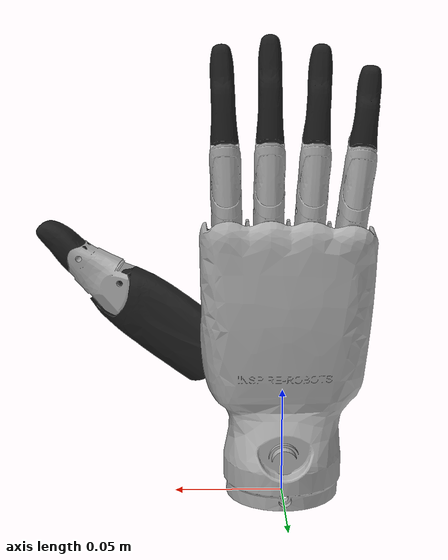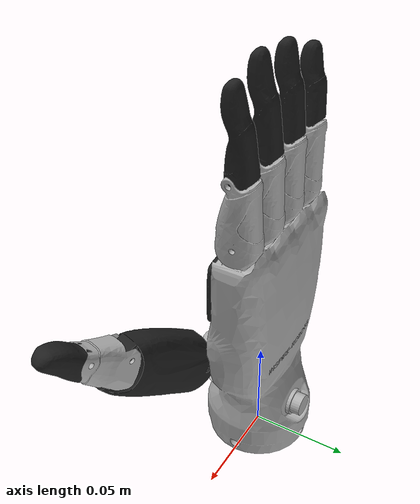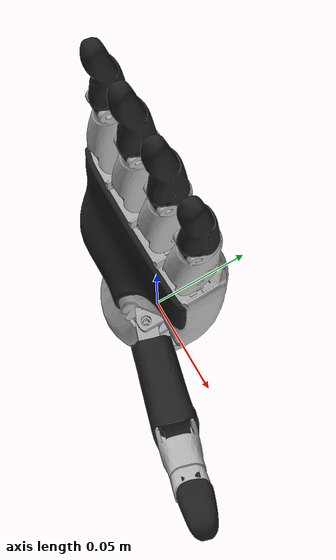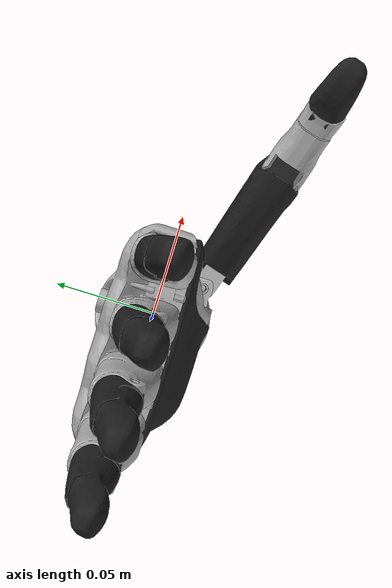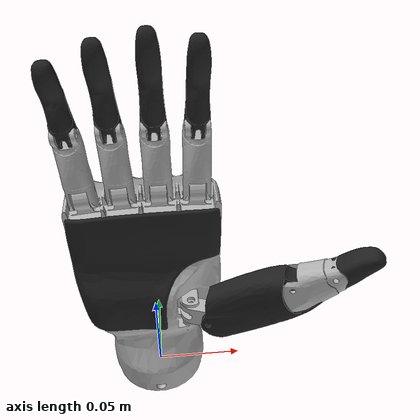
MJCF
<mujoco model="inspire rh56dfx right">
    <compiler angle="radian" meshdir="assets"/>

    <default>
        <site rgba="1 0 0 1" size="0.01" group="5"/>

        <default class="rh56dfx">
            <joint armature="0.01" frictionloss="0.3"/>
            <position kp="500" dampratio="1" inheritrange="1"/>

            <default class="visual">
                <geom group="2" type="mesh" contype="0" conaffinity="0" density="0" material="white"/>
            </default>

            <default class="collision">
                <geom group="3" type="mesh"/>
            </default>

            <default class="collision_shape">
                <geom group="3"/>
            </default>
        </default>
    </default>

    <asset>
        <material name="white" rgba="0.7 0.7 0.7 1"/>
        <material name="black" rgba="0.125 0.125 0.125 1"/>

        <mesh file="right_hand_base.stl"/>
        <mesh file="right_hand_base_cover.stl"/>
        <mesh file="right_thumb_proximal_base.stl"/>
        <mesh file="right_thumb_proximal.stl"/>
        <mesh file="right_thumb_intermediate.stl"/>
        <mesh file="right_thumb_distal.stl"/>
        <mesh file="right_index_proximal.stl"/>
        <mesh file="right_index_intermediate.stl"/>
        <mesh file="right_middle_intermediate.stl"/>
        <mesh file="right_pinky_intermediate.stl"/>

        <mesh name="right_thumb_proximal_base_collision" file="right_thumb_proximal_base.obj"/>
        <mesh name="right_thumb_proximal_collision" file="right_thumb_proximal.obj"/>
        <mesh name="right_thumb_intermediate_collision" file="right_thumb_intermediate.obj"/>
        <mesh name="right_thumb_distal_collision" file="right_thumb_distal.obj"/>
        <mesh name="right_index_proximal_collision" file="right_index_proximal.obj"/>
        <mesh name="right_index_intermediate_collision" file="right_index_intermediate.obj"/>
        <mesh name="right_middle_intermediate_collision" file="right_middle_intermediate.obj"/>
        <mesh name="right_pinky_intermediate_collision" file="right_pinky_intermediate.obj"/>
    </asset>

    <worldbody>
        <body name="hand" quat="0 -0.707 -0.707 0" childclass="rh56dfx" gravcomp="1">
            <geom pos="-0.005939 0 0" quat="1 0 0 0" class="visual" mesh="right_hand_base" mass="0.14143"/>
            <geom pos="-0.005939 0 0" quat="1 0 0 0" class="visual" mesh="right_hand_base_cover" material="black"/>
            <geom pos="0 0 -0.0136" quat="1 0 0 0" class="collision_shape" type="cylinder" size="0.028 0.0139"/>
            <geom pos="-0.0032 0 -0.038" quat="1 0 0 0" class="collision_shape" type="box" size="0.01905 0.0287 0.0101"/>
            <geom pos="-0.0032 0 -0.0682" quat="1 0 0 0" class="collision_shape" type="box" size="0.01905 0.0407 0.02"/>
            <geom pos="0 0 -0.1081" quat="1 0 0 0" class="collision_shape" type="box" size="0.0161 0.0407 0.02"/>
            <geom pos="-0.0016 -0.0309 -0.1340" quat="1 0 0 0" class="collision_shape" type="box" size="0.00625 0.00445 0.00555"/>
            <geom pos="-0.0016 -0.0118 -0.1340" quat="1 0 0 0" class="collision_shape" type="box" size="0.00625 0.00445 0.00555"/>
            <geom pos="-0.0016 0.007 -0.1340" quat="1 0 0 0" class="collision_shape" type="box" size="0.00625 0.00445 0.00555"/>
            <geom pos="-0.0016 0.0262 -0.1340" quat="1 0 0 0" class="collision_shape" type="box" size="0.00625 0.00445 0.00555"/>

            <site name="tcp" pos="-0.03 -0.001 -0.12" quat="0 0.707 0 -0.707"/>

            <body name="thumb_proximal_base" pos="-0.01696 0.02045 -0.0691" quat="1 0 0 0" gravcomp="1">
                <joint name="thumb_proximal_yaw_joint" axis="0 0 1" range="0 1.308" actuatorfrcrange="-2.6 2.6"/>
                <geom class="visual" mesh="right_thumb_proximal_base" quat=".5 .5 -.5 -.5" mass="0.0018869"/>
                <geom class="collision" mesh="right_thumb_proximal_base_collision" quat="0 1 -1 0"/>

                <body name="thumb_proximal" pos="-0.0088099 0.009251 0.009251" quat="0.69993 0.099687 -0.69993 0.099687" gravcomp="1">
                    <joint name="thumb_proximal_pitch_joint" axis="0 0 1" range="0 0.6" actuatorfrcrange="-1.2 1.2"/>
                    <geom class="visual" mesh="right_thumb_proximal" material="black" pos="0 0 0.003" quat="-0.5 0.5 0.5 -0.5" mass="0.0066075"/>
                    <geom class="collision" mesh="right_thumb_proximal_collision" pos="0 0 0.003" quat="0.707 0 0 0.707"/>

                    <body name="thumb_intermediate" pos="-0.0348 0.0438 0" quat="1 0 0 0" gravcomp="1">
                        <joint name="thumb_intermediate_joint" axis="0 0 1" range="0 0.8" actuatorfrcrange="-1.6 1.6"/>
                        <geom class="visual" mesh="right_thumb_intermediate" pos="0 0 0.0015" quat="-0.5 0.5 0.5 -0.5" mass="0.0037847"/>
                        <geom class="collision" mesh="right_thumb_intermediate_collision" pos="0 0 0.0015" quat="0.707 0 0 0.707"/>

                        <body name="thumb_distal" pos="-0.010156 0.020248 0" quat="1 0 0 0" gravcomp="1">
                            <joint name="thumb_distal_joint" axis="0 0 1" range="0 0.4" actuatorfrcrange="-0.8 0.8"/>
                            <geom class="visual" mesh="right_thumb_distal" material="black" pos="0 0 0" quat="-0.5 0.5 0.5 -0.5" mass="0.0033441"/>
                            <geom class="collision" mesh="right_thumb_distal_collision" pos="0 0 0" quat="0.707 0 0 0.707"/>
                        </body>
                    </body>
                </body>
            </body>

            <body name="index_proximal" pos="0.00028 0.032268 -0.13653" quat="0.719 -0.695 0 0" gravcomp="1">
                <joint name="index_proximal_joint" axis="0 0 1" range="0 1.47" actuatorfrcrange="-3 3"/>
                <geom class="visual" mesh="right_index_proximal" quat="0.707 -0.707 0 0" mass="0.0042403"/>
                <geom class="collision" mesh="right_index_proximal_collision" pos="0 0 0" quat="1 0 0 0"/>

                <body name="index_intermediate" pos="-0.0026138 0.032026 -0.0006" quat="1 0 0 0" gravcomp="1">
                    <joint name="index_intermediate_joint" axis="0 0 1" range="-0.04545 1.56" actuatorfrcrange="-3.2 3.2"/>
                    <geom class="visual" mesh="right_index_intermediate" material="black" quat="0.707 -0.707 0 0" mass="0.0045683"/>
                    <geom class="collision" mesh="right_index_intermediate_collision" pos="0 0 -0.0003" quat="1 0 0 0"/>
                </body>
            </body>

            <body name="middle_proximal" pos="0.00028533 0.01295 -0.1371" quat="0.707 -0.707 0 0" gravcomp="1">
                <joint name="middle_proximal_joint" axis="0 0 1" range="0 1.47" actuatorfrcrange="-3 3"/>
                <geom class="visual" mesh="right_index_proximal" quat="0.707 -0.707 0 0" mass="0.0042403"/>
                <geom class="collision" mesh="right_index_proximal_collision" pos="0 0 0" quat="1 0 0 0"/>

                <body name="middle_intermediate" pos="-0.0024229 0.032041 -0.0009" quat="1 0 0 0" gravcomp="1">
                    <joint name="middle_intermediate_joint" axis="0 0 1" range="-0.04545 1.56" actuatorfrcrange="-3.2 3.2"/>
                    <geom class="visual" mesh="right_middle_intermediate" material="black" quat="0.707 -0.707 0 0" mass="0.0045683"/>
                    <geom class="collision" mesh="right_middle_intermediate_collision" pos="0 0 -0.0003" quat="1 0 0 0"/>
                </body>
            </body>

            <body name="ring_proximal" pos="0.00028533 -0.0062872 -0.13691" quat="0.688 -0.725 0 0" gravcomp="1">
                <joint name="ring_proximal_joint" axis="0 0 1" range="0 1.47" actuatorfrcrange="-3 3"/>
                <geom class="visual" mesh="right_index_proximal" quat="0.707 -0.707 0 0" mass="0.0042403"/>
                <geom class="collision" mesh="right_index_proximal_collision" pos="0 0 0" quat="1 0 0 0"/>

                <body name="ring_intermediate" pos="-0.0026138 0.032026 -0.0006" quat="1 0 0 0" gravcomp="1">
                    <joint name="ring_intermediate_joint" axis="0 0 1" range="-0.04545 1.56" actuatorfrcrange="-3.2 3.2"/>
                    <geom class="visual" mesh="right_index_intermediate" material="black" quat="0.707 -0.707 0 0" mass="0.0045683"/>
                    <geom class="collision" mesh="right_index_intermediate_collision" pos="0 0 -0.0003" quat="1 0 0 0"/>
                </body>
            </body>

            <body name="pinky_proximal" pos="0.00028533 -0.025488 -0.13571" quat="0.669 -0.743 0 0" gravcomp="1">
                <joint name="pinky_proximal_joint" axis="0 0 1" range="0 1.47" actuatorfrcrange="-3 3"/>
                <geom class="visual" mesh="right_index_proximal" quat="0.707 -0.707 0 0" mass="0.0042403"/>
                <geom class="collision" mesh="right_index_proximal_collision" pos="0 0 0" quat="1 0 0 0"/>

                <body name="pinky_intermediate" pos="-0.0024229 0.032041 -0.001" quat="1 0 0 0" gravcomp="1">
                    <joint name="pinky_intermediate_joint" axis="0 0 1" range="-0.04545 1.56" actuatorfrcrange="-3.2 3.2"/>
                    <geom class="visual" mesh="right_pinky_intermediate" material="black" quat="0.707 -0.707 0 0" mass="0.0035996"/>
                    <geom class="collision" mesh="right_pinky_intermediate_collision" pos="0 0 -0.0003" quat="1 0 0 0"/>
                </body>
            </body>
        </body>
    </worldbody>

    <contact>
        <exclude body1="hand" body2="thumb_proximal_base"/>
        <exclude body1="hand" body2="thumb_proximal"/>
        <exclude body1="hand" body2="index_proximal"/>
        <exclude body1="hand" body2="middle_proximal"/>
        <exclude body1="hand" body2="ring_proximal"/>
        <exclude body1="hand" body2="pinky_proximal"/>
    </contact>

    <actuator>
        <position class="rh56dfx" name="thumb_proximal_yaw_joint" joint="thumb_proximal_yaw_joint"/>
        <position class="rh56dfx" name="thumb_proximal_pitch_joint" joint="thumb_proximal_pitch_joint"/>
        <position class="rh56dfx" name="thumb_intermediate_joint" joint="thumb_intermediate_joint"/>
        <position class="rh56dfx" name="thumb_distal_joint" joint="thumb_distal_joint"/>
        <position class="rh56dfx" name="index_proximal_joint" joint="index_proximal_joint"/>
        <position class="rh56dfx" name="index_intermediate_joint" joint="index_intermediate_joint"/>
        <position class="rh56dfx" name="middle_proximal_joint" joint="middle_proximal_joint"/>
        <position class="rh56dfx" name="middle_intermediate_joint" joint="middle_intermediate_joint"/>
        <position class="rh56dfx" name="ring_proximal_joint" joint="ring_proximal_joint"/>
        <position class="rh56dfx" name="ring_intermediate_joint" joint="ring_intermediate_joint"/>
        <position class="rh56dfx" name="pinky_proximal_joint" joint="pinky_proximal_joint"/>
        <position class="rh56dfx" name="pinky_intermediate_joint" joint="pinky_intermediate_joint"/>
    </actuator>
</mujoco>
